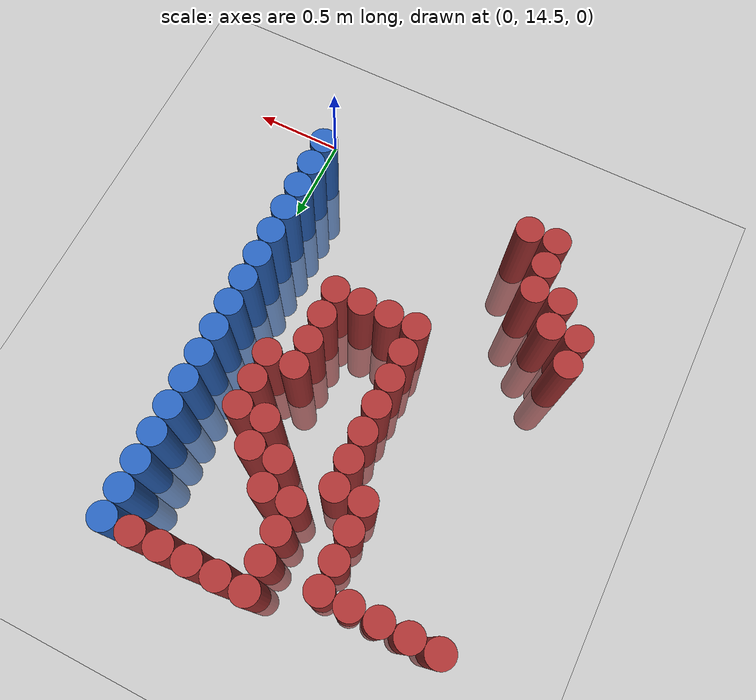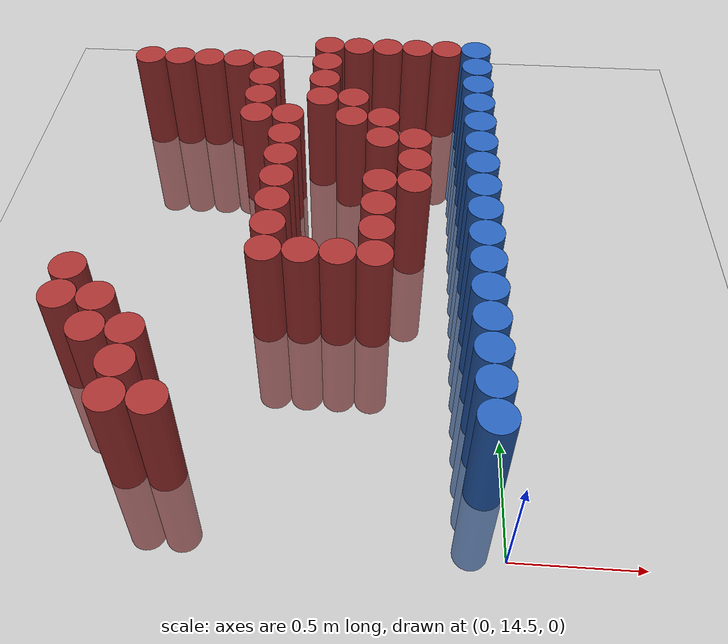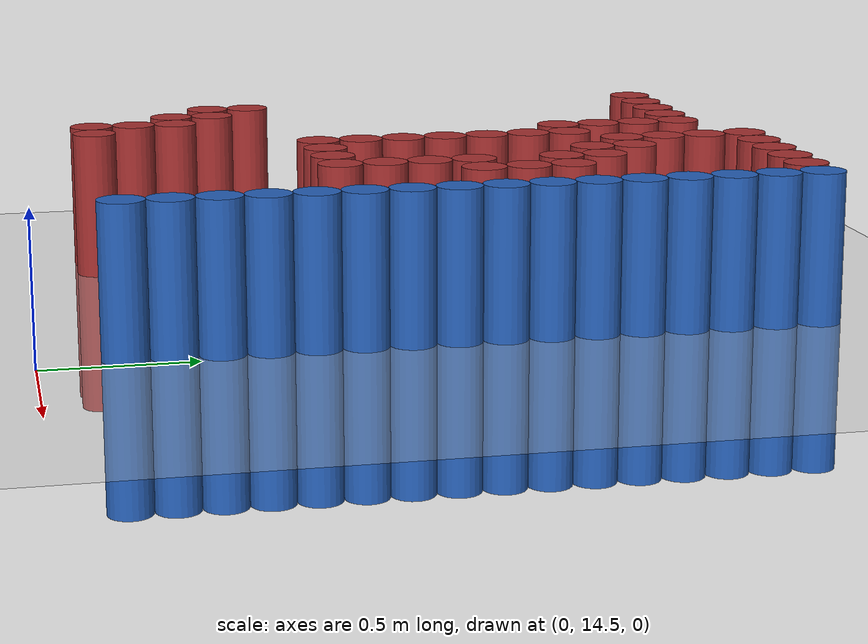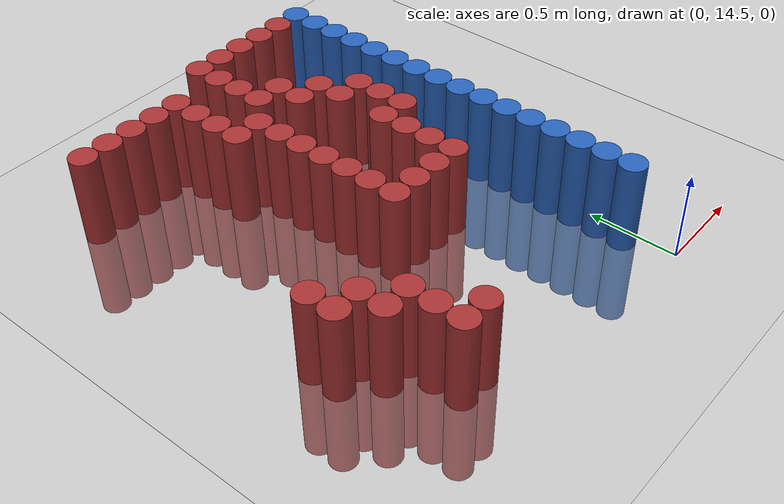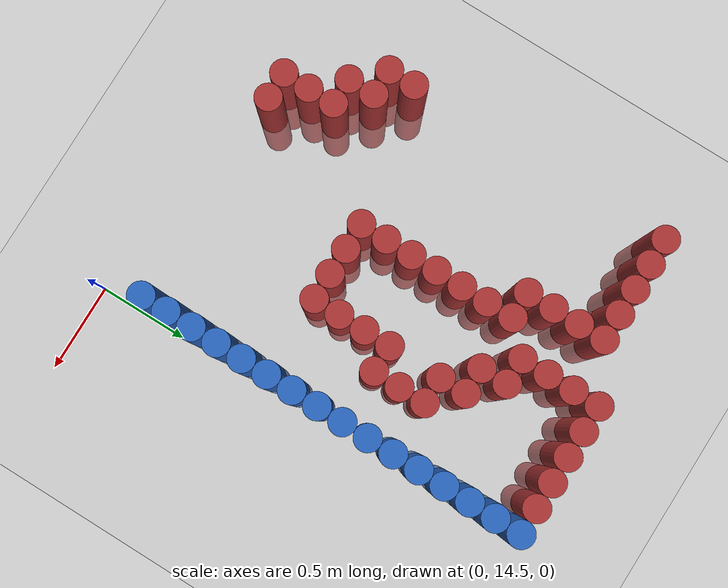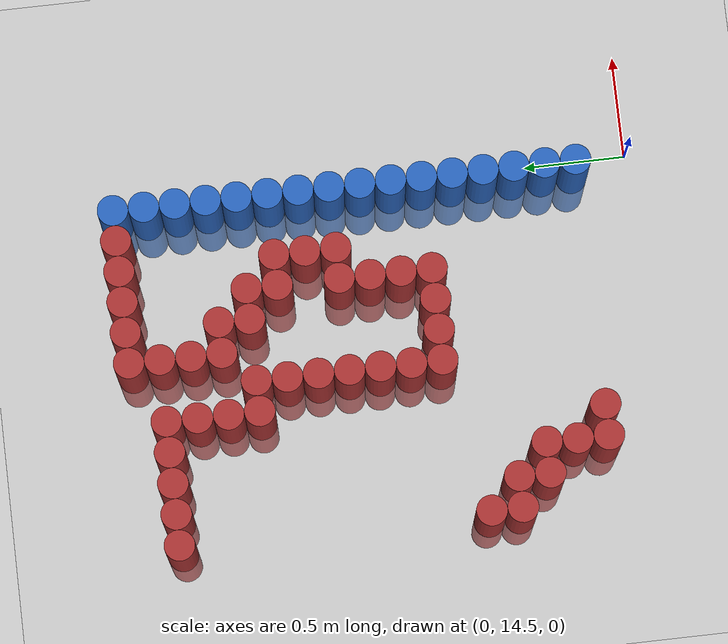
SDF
<sdf version="1.6">
 <world name="default">
  <model name="ground_plane">
   <static>1</static>
   <link name="link">
    <collision name="collision">
     <geometry><plane><normal>0 0 1</normal><size>100 100</size></plane></geometry>
     <surface><friction><ode><mu>100</mu><mu2>50</mu2></ode></friction></surface>
    </collision>
    <visual name="visual">
     <cast_shadows>0</cast_shadows>
     <geometry><plane><normal>0 0 1</normal><size>100 100</size></plane></geometry>
     <material>
      <script><uri>file://media/materials/scripts/gazebo.material</uri><name>Gazebo/Grey</name></script>
     </material>
    </visual>
   </link>
  </model>
  <model name="unit_cylinder_1362">
   <static>1</static>
   <pose>-1.725 15.225 0 0 -0 0</pose>
   <link name="link">
    <inertial>
     <mass>1</mass>
     <inertia><ixx>0.145833</ixx><ixy>0</ixy><ixz>0</ixz><iyy>0.145833</iyy><iyz>0</iyz><izz>0.125</izz></inertia>
    </inertial>
    <collision name="collision">
     <geometry><cylinder><radius>0.075</radius><length>1</length></cylinder></geometry>
    </collision>
    <visual name="visual">
     <geometry><cylinder><radius>0.075</radius><length>1</length></cylinder></geometry>
     <material><ambient>0.648 0.192 0.192 1</ambient><diffuse>0.648 0.192 0.192 1</diffuse></material>
     <material>
      <script><name>Gazebo/Grey</name><uri>file://media/materials/scripts/gazebo.material</uri></script>
     </material>
    </visual>
   </link>
  </model>
  <model name="unit_cylinder_1363">
   <static>1</static>
   <pose>-1.725 15.375 0 0 -0 0</pose>
   <link name="link">
    <inertial>
     <mass>1</mass>
     <inertia><ixx>0.145833</ixx><ixy>0</ixy><ixz>0</ixz><iyy>0.145833</iyy><iyz>0</iyz><izz>0.125</izz></inertia>
    </inertial>
    <collision name="collision">
     <geometry><cylinder><radius>0.075</radius><length>1</length></cylinder></geometry>
    </collision>
    <visual name="visual">
     <geometry><cylinder><radius>0.075</radius><length>1</length></cylinder></geometry>
     <material><ambient>0.648 0.192 0.192 1</ambient><diffuse>0.648 0.192 0.192 1</diffuse></material>
     <material>
      <script><name>Gazebo/Grey</name><uri>file://media/materials/scripts/gazebo.material</uri></script>
     </material>
    </visual>
   </link>
  </model>
  <model name="unit_cylinder_1364">
   <static>1</static>
   <pose>-1.725 16.875 0 0 -0 0</pose>
   <link name="link">
    <inertial>
     <mass>1</mass>
     <inertia><ixx>0.145833</ixx><ixy>0</ixy><ixz>0</ixz><iyy>0.145833</iyy><iyz>0</iyz><izz>0.125</izz></inertia>
    </inertial>
    <collision name="collision">
     <geometry><cylinder><radius>0.075</radius><length>1</length></cylinder></geometry>
    </collision>
    <visual name="visual">
     <geometry><cylinder><radius>0.075</radius><length>1</length></cylinder></geometry>
     <material><ambient>0.648 0.192 0.192 1</ambient><diffuse>0.648 0.192 0.192 1</diffuse></material>
     <material>
      <script><name>Gazebo/Grey</name><uri>file://media/materials/scripts/gazebo.material</uri></script>
     </material>
    </visual>
   </link>
  </model>
  <model name="unit_cylinder_1381">
   <static>1</static>
   <pose>-1.575 15.075 0 0 -0 0</pose>
   <link name="link">
    <inertial>
     <mass>1</mass>
     <inertia><ixx>0.145833</ixx><ixy>0</ixy><ixz>0</ixz><iyy>0.145833</iyy><iyz>0</iyz><izz>0.125</izz></inertia>
    </inertial>
    <collision name="collision">
     <geometry><cylinder><radius>0.075</radius><length>1</length></cylinder></geometry>
    </collision>
    <visual name="visual">
     <geometry><cylinder><radius>0.075</radius><length>1</length></cylinder></geometry>
     <material><ambient>0.648 0.192 0.192 1</ambient><diffuse>0.648 0.192 0.192 1</diffuse></material>
     <material>
      <script><name>Gazebo/Grey</name><uri>file://media/materials/scripts/gazebo.material</uri></script>
     </material>
    </visual>
   </link>
  </model>
  <model name="unit_cylinder_1382">
   <static>1</static>
   <pose>-1.575 15.225 0 0 -0 0</pose>
   <link name="link">
    <inertial>
     <mass>1</mass>
     <inertia><ixx>0.145833</ixx><ixy>0</ixy><ixz>0</ixz><iyy>0.145833</iyy><iyz>0</iyz><izz>0.125</izz></inertia>
    </inertial>
    <collision name="collision">
     <geometry><cylinder><radius>0.075</radius><length>1</length></cylinder></geometry>
    </collision>
    <visual name="visual">
     <geometry><cylinder><radius>0.075</radius><length>1</length></cylinder></geometry>
     <material><ambient>0.648 0.192 0.192 1</ambient><diffuse>0.648 0.192 0.192 1</diffuse></material>
     <material>
      <script><name>Gazebo/Grey</name><uri>file://media/materials/scripts/gazebo.material</uri></script>
     </material>
    </visual>
   </link>
  </model>
  <model name="unit_cylinder_1383">
   <static>1</static>
   <pose>-1.575 16.875 0 0 -0 0</pose>
   <link name="link">
    <inertial>
     <mass>1</mass>
     <inertia><ixx>0.145833</ixx><ixy>0</ixy><ixz>0</ixz><iyy>0.145833</iyy><iyz>0</iyz><izz>0.125</izz></inertia>
    </inertial>
    <collision name="collision">
     <geometry><cylinder><radius>0.075</radius><length>1</length></cylinder></geometry>
    </collision>
    <visual name="visual">
     <geometry><cylinder><radius>0.075</radius><length>1</length></cylinder></geometry>
     <material><ambient>0.648 0.192 0.192 1</ambient><diffuse>0.648 0.192 0.192 1</diffuse></material>
     <material>
      <script><name>Gazebo/Grey</name><uri>file://media/materials/scripts/gazebo.material</uri></script>
     </material>
    </visual>
   </link>
  </model>
  <model name="unit_cylinder_1399">
   <static>1</static>
   <pose>-1.425 14.775 0 0 -0 0</pose>
   <link name="link">
    <inertial>
     <mass>1</mass>
     <inertia><ixx>0.145833</ixx><ixy>0</ixy><ixz>0</ixz><iyy>0.145833</iyy><iyz>0</iyz><izz>0.125</izz></inertia>
    </inertial>
    <collision name="collision">
     <geometry><cylinder><radius>0.075</radius><length>1</length></cylinder></geometry>
    </collision>
    <visual name="visual">
     <geometry><cylinder><radius>0.075</radius><length>1</length></cylinder></geometry>
     <material><ambient>0.648 0.192 0.192 1</ambient><diffuse>0.648 0.192 0.192 1</diffuse></material>
     <material>
      <script><name>Gazebo/Grey</name><uri>file://media/materials/scripts/gazebo.material</uri></script>
     </material>
    </visual>
   </link>
  </model>
  <model name="unit_cylinder_1400">
   <static>1</static>
   <pose>-1.425 14.925 0 0 -0 0</pose>
   <link name="link">
    <inertial>
     <mass>1</mass>
     <inertia><ixx>0.145833</ixx><ixy>0</ixy><ixz>0</ixz><iyy>0.145833</iyy><iyz>0</iyz><izz>0.125</izz></inertia>
    </inertial>
    <collision name="collision">
     <geometry><cylinder><radius>0.075</radius><length>1</length></cylinder></geometry>
    </collision>
    <visual name="visual">
     <geometry><cylinder><radius>0.075</radius><length>1</length></cylinder></geometry>
     <material><ambient>0.648 0.192 0.192 1</ambient><diffuse>0.648 0.192 0.192 1</diffuse></material>
     <material>
      <script><name>Gazebo/Grey</name><uri>file://media/materials/scripts/gazebo.material</uri></script>
     </material>
    </visual>
   </link>
  </model>
  <model name="unit_cylinder_1401">
   <static>1</static>
   <pose>-1.425 15.075 0 0 -0 0</pose>
   <link name="link">
    <inertial>
     <mass>1</mass>
     <inertia><ixx>0.145833</ixx><ixy>0</ixy><ixz>0</ixz><iyy>0.145833</iyy><iyz>0</iyz><izz>0.125</izz></inertia>
    </inertial>
    <collision name="collision">
     <geometry><cylinder><radius>0.075</radius><length>1</length></cylinder></geometry>
    </collision>
    <visual name="visual">
     <geometry><cylinder><radius>0.075</radius><length>1</length></cylinder></geometry>
     <material><ambient>0.648 0.192 0.192 1</ambient><diffuse>0.648 0.192 0.192 1</diffuse></material>
     <material>
      <script><name>Gazebo/Grey</name><uri>file://media/materials/scripts/gazebo.material</uri></script>
     </material>
    </visual>
   </link>
  </model>
  <model name="unit_cylinder_1402">
   <static>1</static>
   <pose>-1.425 16.875 0 0 -0 0</pose>
   <link name="link">
    <inertial>
     <mass>1</mass>
     <inertia><ixx>0.145833</ixx><ixy>0</ixy><ixz>0</ixz><iyy>0.145833</iyy><iyz>0</iyz><izz>0.125</izz></inertia>
    </inertial>
    <collision name="collision">
     <geometry><cylinder><radius>0.075</radius><length>1</length></cylinder></geometry>
    </collision>
    <visual name="visual">
     <geometry><cylinder><radius>0.075</radius><length>1</length></cylinder></geometry>
     <material><ambient>0.648 0.192 0.192 1</ambient><diffuse>0.648 0.192 0.192 1</diffuse></material>
     <material>
      <script><name>Gazebo/Grey</name><uri>file://media/materials/scripts/gazebo.material</uri></script>
     </material>
    </visual>
   </link>
  </model>
  <model name="unit_cylinder_1421">
   <static>1</static>
   <pose>-1.275 14.775 0 0 -0 0</pose>
   <link name="link">
    <inertial>
     <mass>1</mass>
     <inertia><ixx>0.145833</ixx><ixy>0</ixy><ixz>0</ixz><iyy>0.145833</iyy><iyz>0</iyz><izz>0.125</izz></inertia>
    </inertial>
    <collision name="collision">
     <geometry><cylinder><radius>0.075</radius><length>1</length></cylinder></geometry>
    </collision>
    <visual name="visual">
     <geometry><cylinder><radius>0.075</radius><length>1</length></cylinder></geometry>
     <material><ambient>0.648 0.192 0.192 1</ambient><diffuse>0.648 0.192 0.192 1</diffuse></material>
     <material>
      <script><name>Gazebo/Grey</name><uri>file://media/materials/scripts/gazebo.material</uri></script>
     </material>
    </visual>
   </link>
  </model>
  <model name="unit_cylinder_1422">
   <static>1</static>
   <pose>-1.275 16.875 0 0 -0 0</pose>
   <link name="link">
    <inertial>
     <mass>1</mass>
     <inertia><ixx>0.145833</ixx><ixy>0</ixy><ixz>0</ixz><iyy>0.145833</iyy><iyz>0</iyz><izz>0.125</izz></inertia>
    </inertial>
    <collision name="collision">
     <geometry><cylinder><radius>0.075</radius><length>1</length></cylinder></geometry>
    </collision>
    <visual name="visual">
     <geometry><cylinder><radius>0.075</radius><length>1</length></cylinder></geometry>
     <material><ambient>0.648 0.192 0.192 1</ambient><diffuse>0.648 0.192 0.192 1</diffuse></material>
     <material>
      <script><name>Gazebo/Grey</name><uri>file://media/materials/scripts/gazebo.material</uri></script>
     </material>
    </visual>
   </link>
  </model>
  <model name="unit_cylinder_1443">
   <static>1</static>
   <pose>-1.125 16.425 0 0 -0 0</pose>
   <link name="link">
    <inertial>
     <mass>1</mass>
     <inertia><ixx>0.145833</ixx><ixy>0</ixy><ixz>0</ixz><iyy>0.145833</iyy><iyz>0</iyz><izz>0.125</izz></inertia>
    </inertial>
    <collision name="collision">
     <geometry><cylinder><radius>0.075</radius><length>1</length></cylinder></geometry>
    </collision>
    <visual name="visual">
     <geometry><cylinder><radius>0.075</radius><length>1</length></cylinder></geometry>
     <material><ambient>0.648 0.192 0.192 1</ambient><diffuse>0.648 0.192 0.192 1</diffuse></material>
     <material>
      <script><name>Gazebo/Grey</name><uri>file://media/materials/scripts/gazebo.material</uri></script>
     </material>
    </visual>
   </link>
  </model>
  <model name="unit_cylinder_1444">
   <static>1</static>
   <pose>-1.125 16.575 0 0 -0 0</pose>
   <link name="link">
    <inertial>
     <mass>1</mass>
     <inertia><ixx>0.145833</ixx><ixy>0</ixy><ixz>0</ixz><iyy>0.145833</iyy><iyz>0</iyz><izz>0.125</izz></inertia>
    </inertial>
    <collision name="collision">
     <geometry><cylinder><radius>0.075</radius><length>1</length></cylinder></geometry>
    </collision>
    <visual name="visual">
     <geometry><cylinder><radius>0.075</radius><length>1</length></cylinder></geometry>
     <material><ambient>0.648 0.192 0.192 1</ambient><diffuse>0.648 0.192 0.192 1</diffuse></material>
     <material>
      <script><name>Gazebo/Grey</name><uri>file://media/materials/scripts/gazebo.material</uri></script>
     </material>
    </visual>
   </link>
  </model>
  <model name="unit_cylinder_1445">
   <static>1</static>
   <pose>-1.125 16.725 0 0 -0 0</pose>
   <link name="link">
    <inertial>
     <mass>1</mass>
     <inertia><ixx>0.145833</ixx><ixy>0</ixy><ixz>0</ixz><iyy>0.145833</iyy><iyz>0</iyz><izz>0.125</izz></inertia>
    </inertial>
    <collision name="collision">
     <geometry><cylinder><radius>0.075</radius><length>1</length></cylinder></geometry>
    </collision>
    <visual name="visual">
     <geometry><cylinder><radius>0.075</radius><length>1</length></cylinder></geometry>
     <material><ambient>0.648 0.192 0.192 1</ambient><diffuse>0.648 0.192 0.192 1</diffuse></material>
     <material>
      <script><name>Gazebo/Grey</name><uri>file://media/materials/scripts/gazebo.material</uri></script>
     </material>
    </visual>
   </link>
  </model>
  <model name="unit_cylinder_1446">
   <static>1</static>
   <pose>-1.125 16.875 0 0 -0 0</pose>
   <link name="link">
    <inertial>
     <mass>1</mass>
     <inertia><ixx>0.145833</ixx><ixy>0</ixy><ixz>0</ixz><iyy>0.145833</iyy><iyz>0</iyz><izz>0.125</izz></inertia>
    </inertial>
    <collision name="collision">
     <geometry><cylinder><radius>0.075</radius><length>1</length></cylinder></geometry>
    </collision>
    <visual name="visual">
     <geometry><cylinder><radius>0.075</radius><length>1</length></cylinder></geometry>
     <material><ambient>0.648 0.192 0.192 1</ambient><diffuse>0.648 0.192 0.192 1</diffuse></material>
     <material>
      <script><name>Gazebo/Grey</name><uri>file://media/materials/scripts/gazebo.material</uri></script>
     </material>
    </visual>
   </link>
  </model>
  <model name="unit_cylinder_1466">
   <static>1</static>
   <pose>-0.975 15.525 0 0 -0 0</pose>
   <link name="link">
    <inertial>
     <mass>1</mass>
     <inertia><ixx>0.145833</ixx><ixy>0</ixy><ixz>0</ixz><iyy>0.145833</iyy><iyz>0</iyz><izz>0.125</izz></inertia>
    </inertial>
    <collision name="collision">
     <geometry><cylinder><radius>0.075</radius><length>1</length></cylinder></geometry>
    </collision>
    <visual name="visual">
     <geometry><cylinder><radius>0.075</radius><length>1</length></cylinder></geometry>
     <material><ambient>0.648 0.192 0.192 1</ambient><diffuse>0.648 0.192 0.192 1</diffuse></material>
     <material>
      <script><name>Gazebo/Grey</name><uri>file://media/materials/scripts/gazebo.material</uri></script>
     </material>
    </visual>
   </link>
  </model>
  <model name="unit_cylinder_1467">
   <static>1</static>
   <pose>-0.975 15.675 0 0 -0 0</pose>
   <link name="link">
    <inertial>
     <mass>1</mass>
     <inertia><ixx>0.145833</ixx><ixy>0</ixy><ixz>0</ixz><iyy>0.145833</iyy><iyz>0</iyz><izz>0.125</izz></inertia>
    </inertial>
    <collision name="collision">
     <geometry><cylinder><radius>0.075</radius><length>1</length></cylinder></geometry>
    </collision>
    <visual name="visual">
     <geometry><cylinder><radius>0.075</radius><length>1</length></cylinder></geometry>
     <material><ambient>0.648 0.192 0.192 1</ambient><diffuse>0.648 0.192 0.192 1</diffuse></material>
     <material>
      <script><name>Gazebo/Grey</name><uri>file://media/materials/scripts/gazebo.material</uri></script>
     </material>
    </visual>
   </link>
  </model>
  <model name="unit_cylinder_1468">
   <static>1</static>
   <pose>-0.975 15.825 0 0 -0 0</pose>
   <link name="link">
    <inertial>
     <mass>1</mass>
     <inertia><ixx>0.145833</ixx><ixy>0</ixy><ixz>0</ixz><iyy>0.145833</iyy><iyz>0</iyz><izz>0.125</izz></inertia>
    </inertial>
    <collision name="collision">
     <geometry><cylinder><radius>0.075</radius><length>1</length></cylinder></geometry>
    </collision>
    <visual name="visual">
     <geometry><cylinder><radius>0.075</radius><length>1</length></cylinder></geometry>
     <material><ambient>0.648 0.192 0.192 1</ambient><diffuse>0.648 0.192 0.192 1</diffuse></material>
     <material>
      <script><name>Gazebo/Grey</name><uri>file://media/materials/scripts/gazebo.material</uri></script>
     </material>
    </visual>
   </link>
  </model>
  <model name="unit_cylinder_1469">
   <static>1</static>
   <pose>-0.975 15.975 0 0 -0 0</pose>
   <link name="link">
    <inertial>
     <mass>1</mass>
     <inertia><ixx>0.145833</ixx><ixy>0</ixy><ixz>0</ixz><iyy>0.145833</iyy><iyz>0</iyz><izz>0.125</izz></inertia>
    </inertial>
    <collision name="collision">
     <geometry><cylinder><radius>0.075</radius><length>1</length></cylinder></geometry>
    </collision>
    <visual name="visual">
     <geometry><cylinder><radius>0.075</radius><length>1</length></cylinder></geometry>
     <material><ambient>0.648 0.192 0.192 1</ambient><diffuse>0.648 0.192 0.192 1</diffuse></material>
     <material>
      <script><name>Gazebo/Grey</name><uri>file://media/materials/scripts/gazebo.material</uri></script>
     </material>
    </visual>
   </link>
  </model>
  <model name="unit_cylinder_1470">
   <static>1</static>
   <pose>-0.975 16.125 0 0 -0 0</pose>
   <link name="link">
    <inertial>
     <mass>1</mass>
     <inertia><ixx>0.145833</ixx><ixy>0</ixy><ixz>0</ixz><iyy>0.145833</iyy><iyz>0</iyz><izz>0.125</izz></inertia>
    </inertial>
    <collision name="collision">
     <geometry><cylinder><radius>0.075</radius><length>1</length></cylinder></geometry>
    </collision>
    <visual name="visual">
     <geometry><cylinder><radius>0.075</radius><length>1</length></cylinder></geometry>
     <material><ambient>0.648 0.192 0.192 1</ambient><diffuse>0.648 0.192 0.192 1</diffuse></material>
     <material>
      <script><name>Gazebo/Grey</name><uri>file://media/materials/scripts/gazebo.material</uri></script>
     </material>
    </visual>
   </link>
  </model>
  <model name="unit_cylinder_1471">
   <static>1</static>
   <pose>-0.975 16.275 0 0 -0 0</pose>
   <link name="link">
    <inertial>
     <mass>1</mass>
     <inertia><ixx>0.145833</ixx><ixy>0</ixy><ixz>0</ixz><iyy>0.145833</iyy><iyz>0</iyz><izz>0.125</izz></inertia>
    </inertial>
    <collision name="collision">
     <geometry><cylinder><radius>0.075</radius><length>1</length></cylinder></geometry>
    </collision>
    <visual name="visual">
     <geometry><cylinder><radius>0.075</radius><length>1</length></cylinder></geometry>
     <material><ambient>0.648 0.192 0.192 1</ambient><diffuse>0.648 0.192 0.192 1</diffuse></material>
     <material>
      <script><name>Gazebo/Grey</name><uri>file://media/materials/scripts/gazebo.material</uri></script>
     </material>
    </visual>
   </link>
  </model>
  <model name="unit_cylinder_1472">
   <static>1</static>
   <pose>-0.975 16.425 0 0 -0 0</pose>
   <link name="link">
    <inertial>
     <mass>1</mass>
     <inertia><ixx>0.145833</ixx><ixy>0</ixy><ixz>0</ixz><iyy>0.145833</iyy><iyz>0</iyz><izz>0.125</izz></inertia>
    </inertial>
    <collision name="collision">
     <geometry><cylinder><radius>0.075</radius><length>1</length></cylinder></geometry>
    </collision>
    <visual name="visual">
     <geometry><cylinder><radius>0.075</radius><length>1</length></cylinder></geometry>
     <material><ambient>0.648 0.192 0.192 1</ambient><diffuse>0.648 0.192 0.192 1</diffuse></material>
     <material>
      <script><name>Gazebo/Grey</name><uri>file://media/materials/scripts/gazebo.material</uri></script>
     </material>
    </visual>
   </link>
  </model>
  <model name="unit_cylinder_1485">
   <static>1</static>
   <pose>-0.825 15.525 0 0 -0 0</pose>
   <link name="link">
    <inertial>
     <mass>1</mass>
     <inertia><ixx>0.145833</ixx><ixy>0</ixy><ixz>0</ixz><iyy>0.145833</iyy><iyz>0</iyz><izz>0.125</izz></inertia>
    </inertial>
    <collision name="collision">
     <geometry><cylinder><radius>0.075</radius><length>1</length></cylinder></geometry>
    </collision>
    <visual name="visual">
     <geometry><cylinder><radius>0.075</radius><length>1</length></cylinder></geometry>
     <material><ambient>0.648 0.192 0.192 1</ambient><diffuse>0.648 0.192 0.192 1</diffuse></material>
     <material>
      <script><name>Gazebo/Grey</name><uri>file://media/materials/scripts/gazebo.material</uri></script>
     </material>
    </visual>
   </link>
  </model>
  <model name="unit_cylinder_1486">
   <static>1</static>
   <pose>-0.825 16.575 0 0 -0 0</pose>
   <link name="link">
    <inertial>
     <mass>1</mass>
     <inertia><ixx>0.145833</ixx><ixy>0</ixy><ixz>0</ixz><iyy>0.145833</iyy><iyz>0</iyz><izz>0.125</izz></inertia>
    </inertial>
    <collision name="collision">
     <geometry><cylinder><radius>0.075</radius><length>1</length></cylinder></geometry>
    </collision>
    <visual name="visual">
     <geometry><cylinder><radius>0.075</radius><length>1</length></cylinder></geometry>
     <material><ambient>0.648 0.192 0.192 1</ambient><diffuse>0.648 0.192 0.192 1</diffuse></material>
     <material>
      <script><name>Gazebo/Grey</name><uri>file://media/materials/scripts/gazebo.material</uri></script>
     </material>
    </visual>
   </link>
  </model>
  <model name="unit_cylinder_1487">
   <static>1</static>
   <pose>-0.825 16.725 0 0 -0 0</pose>
   <link name="link">
    <inertial>
     <mass>1</mass>
     <inertia><ixx>0.145833</ixx><ixy>0</ixy><ixz>0</ixz><iyy>0.145833</iyy><iyz>0</iyz><izz>0.125</izz></inertia>
    </inertial>
    <collision name="collision">
     <geometry><cylinder><radius>0.075</radius><length>1</length></cylinder></geometry>
    </collision>
    <visual name="visual">
     <geometry><cylinder><radius>0.075</radius><length>1</length></cylinder></geometry>
     <material><ambient>0.648 0.192 0.192 1</ambient><diffuse>0.648 0.192 0.192 1</diffuse></material>
     <material>
      <script><name>Gazebo/Grey</name><uri>file://media/materials/scripts/gazebo.material</uri></script>
     </material>
    </visual>
   </link>
  </model>
  <model name="unit_cylinder_1488">
   <static>1</static>
   <pose>-0.825 16.875 0 0 -0 0</pose>
   <link name="link">
    <inertial>
     <mass>1</mass>
     <inertia><ixx>0.145833</ixx><ixy>0</ixy><ixz>0</ixz><iyy>0.145833</iyy><iyz>0</iyz><izz>0.125</izz></inertia>
    </inertial>
    <collision name="collision">
     <geometry><cylinder><radius>0.075</radius><length>1</length></cylinder></geometry>
    </collision>
    <visual name="visual">
     <geometry><cylinder><radius>0.075</radius><length>1</length></cylinder></geometry>
     <material><ambient>0.648 0.192 0.192 1</ambient><diffuse>0.648 0.192 0.192 1</diffuse></material>
     <material>
      <script><name>Gazebo/Grey</name><uri>file://media/materials/scripts/gazebo.material</uri></script>
     </material>
    </visual>
   </link>
  </model>
  <model name="unit_cylinder_1489">
   <static>1</static>
   <pose>-0.825 17.025 0 0 -0 0</pose>
   <link name="link">
    <inertial>
     <mass>1</mass>
     <inertia><ixx>0.145833</ixx><ixy>0</ixy><ixz>0</ixz><iyy>0.145833</iyy><iyz>0</iyz><izz>0.125</izz></inertia>
    </inertial>
    <collision name="collision">
     <geometry><cylinder><radius>0.075</radius><length>1</length></cylinder></geometry>
    </collision>
    <visual name="visual">
     <geometry><cylinder><radius>0.075</radius><length>1</length></cylinder></geometry>
     <material><ambient>0.648 0.192 0.192 1</ambient><diffuse>0.648 0.192 0.192 1</diffuse></material>
     <material>
      <script><name>Gazebo/Grey</name><uri>file://media/materials/scripts/gazebo.material</uri></script>
     </material>
    </visual>
   </link>
  </model>
  <model name="unit_cylinder_1500">
   <static>1</static>
   <pose>-0.675 15.525 0 0 -0 0</pose>
   <link name="link">
    <inertial>
     <mass>1</mass>
     <inertia><ixx>0.145833</ixx><ixy>0</ixy><ixz>0</ixz><iyy>0.145833</iyy><iyz>0</iyz><izz>0.125</izz></inertia>
    </inertial>
    <collision name="collision">
     <geometry><cylinder><radius>0.075</radius><length>1</length></cylinder></geometry>
    </collision>
    <visual name="visual">
     <geometry><cylinder><radius>0.075</radius><length>1</length></cylinder></geometry>
     <material><ambient>0.648 0.192 0.192 1</ambient><diffuse>0.648 0.192 0.192 1</diffuse></material>
     <material>
      <script><name>Gazebo/Grey</name><uri>file://media/materials/scripts/gazebo.material</uri></script>
     </material>
    </visual>
   </link>
  </model>
  <model name="unit_cylinder_1501">
   <static>1</static>
   <pose>-0.675 16.425 0 0 -0 0</pose>
   <link name="link">
    <inertial>
     <mass>1</mass>
     <inertia><ixx>0.145833</ixx><ixy>0</ixy><ixz>0</ixz><iyy>0.145833</iyy><iyz>0</iyz><izz>0.125</izz></inertia>
    </inertial>
    <collision name="collision">
     <geometry><cylinder><radius>0.075</radius><length>1</length></cylinder></geometry>
    </collision>
    <visual name="visual">
     <geometry><cylinder><radius>0.075</radius><length>1</length></cylinder></geometry>
     <material><ambient>0.648 0.192 0.192 1</ambient><diffuse>0.648 0.192 0.192 1</diffuse></material>
     <material>
      <script><name>Gazebo/Grey</name><uri>file://media/materials/scripts/gazebo.material</uri></script>
     </material>
    </visual>
   </link>
  </model>
  <model name="unit_cylinder_1502">
   <static>1</static>
   <pose>-0.675 16.575 0 0 -0 0</pose>
   <link name="link">
    <inertial>
     <mass>1</mass>
     <inertia><ixx>0.145833</ixx><ixy>0</ixy><ixz>0</ixz><iyy>0.145833</iyy><iyz>0</iyz><izz>0.125</izz></inertia>
    </inertial>
    <collision name="collision">
     <geometry><cylinder><radius>0.075</radius><length>1</length></cylinder></geometry>
    </collision>
    <visual name="visual">
     <geometry><cylinder><radius>0.075</radius><length>1</length></cylinder></geometry>
     <material><ambient>0.648 0.192 0.192 1</ambient><diffuse>0.648 0.192 0.192 1</diffuse></material>
     <material>
      <script><name>Gazebo/Grey</name><uri>file://media/materials/scripts/gazebo.material</uri></script>
     </material>
    </visual>
   </link>
  </model>
  <model name="unit_cylinder_1503">
   <static>1</static>
   <pose>-0.675 17.025 0 0 -0 0</pose>
   <link name="link">
    <inertial>
     <mass>1</mass>
     <inertia><ixx>0.145833</ixx><ixy>0</ixy><ixz>0</ixz><iyy>0.145833</iyy><iyz>0</iyz><izz>0.125</izz></inertia>
    </inertial>
    <collision name="collision">
     <geometry><cylinder><radius>0.075</radius><length>1</length></cylinder></geometry>
    </collision>
    <visual name="visual">
     <geometry><cylinder><radius>0.075</radius><length>1</length></cylinder></geometry>
     <material><ambient>0.648 0.192 0.192 1</ambient><diffuse>0.648 0.192 0.192 1</diffuse></material>
     <material>
      <script><name>Gazebo/Grey</name><uri>file://media/materials/scripts/gazebo.material</uri></script>
     </material>
    </visual>
   </link>
  </model>
  <model name="unit_cylinder_1524">
   <static>1</static>
   <pose>-0.525 15.525 0 0 -0 0</pose>
   <link name="link">
    <inertial>
     <mass>1</mass>
     <inertia><ixx>0.145833</ixx><ixy>0</ixy><ixz>0</ixz><iyy>0.145833</iyy><iyz>0</iyz><izz>0.125</izz></inertia>
    </inertial>
    <collision name="collision">
     <geometry><cylinder><radius>0.075</radius><length>1</length></cylinder></geometry>
    </collision>
    <visual name="visual">
     <geometry><cylinder><radius>0.075</radius><length>1</length></cylinder></geometry>
     <material><ambient>0.648 0.192 0.192 1</ambient><diffuse>0.648 0.192 0.192 1</diffuse></material>
     <material>
      <script><name>Gazebo/Grey</name><uri>file://media/materials/scripts/gazebo.material</uri></script>
     </material>
    </visual>
   </link>
  </model>
  <model name="unit_cylinder_1525">
   <static>1</static>
   <pose>-0.525 15.675 0 0 -0 0</pose>
   <link name="link">
    <inertial>
     <mass>1</mass>
     <inertia><ixx>0.145833</ixx><ixy>0</ixy><ixz>0</ixz><iyy>0.145833</iyy><iyz>0</iyz><izz>0.125</izz></inertia>
    </inertial>
    <collision name="collision">
     <geometry><cylinder><radius>0.075</radius><length>1</length></cylinder></geometry>
    </collision>
    <visual name="visual">
     <geometry><cylinder><radius>0.075</radius><length>1</length></cylinder></geometry>
     <material><ambient>0.648 0.192 0.192 1</ambient><diffuse>0.648 0.192 0.192 1</diffuse></material>
     <material>
      <script><name>Gazebo/Grey</name><uri>file://media/materials/scripts/gazebo.material</uri></script>
     </material>
    </visual>
   </link>
  </model>
  <model name="unit_cylinder_1526">
   <static>1</static>
   <pose>-0.525 15.825 0 0 -0 0</pose>
   <link name="link">
    <inertial>
     <mass>1</mass>
     <inertia><ixx>0.145833</ixx><ixy>0</ixy><ixz>0</ixz><iyy>0.145833</iyy><iyz>0</iyz><izz>0.125</izz></inertia>
    </inertial>
    <collision name="collision">
     <geometry><cylinder><radius>0.075</radius><length>1</length></cylinder></geometry>
    </collision>
    <visual name="visual">
     <geometry><cylinder><radius>0.075</radius><length>1</length></cylinder></geometry>
     <material><ambient>0.648 0.192 0.192 1</ambient><diffuse>0.648 0.192 0.192 1</diffuse></material>
     <material>
      <script><name>Gazebo/Grey</name><uri>file://media/materials/scripts/gazebo.material</uri></script>
     </material>
    </visual>
   </link>
  </model>
  <model name="unit_cylinder_1527">
   <static>1</static>
   <pose>-0.525 15.975 0 0 -0 0</pose>
   <link name="link">
    <inertial>
     <mass>1</mass>
     <inertia><ixx>0.145833</ixx><ixy>0</ixy><ixz>0</ixz><iyy>0.145833</iyy><iyz>0</iyz><izz>0.125</izz></inertia>
    </inertial>
    <collision name="collision">
     <geometry><cylinder><radius>0.075</radius><length>1</length></cylinder></geometry>
    </collision>
    <visual name="visual">
     <geometry><cylinder><radius>0.075</radius><length>1</length></cylinder></geometry>
     <material><ambient>0.648 0.192 0.192 1</ambient><diffuse>0.648 0.192 0.192 1</diffuse></material>
     <material>
      <script><name>Gazebo/Grey</name><uri>file://media/materials/scripts/gazebo.material</uri></script>
     </material>
    </visual>
   </link>
  </model>
  <model name="unit_cylinder_1528">
   <static>1</static>
   <pose>-0.525 16.275 0 0 -0 0</pose>
   <link name="link">
    <inertial>
     <mass>1</mass>
     <inertia><ixx>0.145833</ixx><ixy>0</ixy><ixz>0</ixz><iyy>0.145833</iyy><iyz>0</iyz><izz>0.125</izz></inertia>
    </inertial>
    <collision name="collision">
     <geometry><cylinder><radius>0.075</radius><length>1</length></cylinder></geometry>
    </collision>
    <visual name="visual">
     <geometry><cylinder><radius>0.075</radius><length>1</length></cylinder></geometry>
     <material><ambient>0.648 0.192 0.192 1</ambient><diffuse>0.648 0.192 0.192 1</diffuse></material>
     <material>
      <script><name>Gazebo/Grey</name><uri>file://media/materials/scripts/gazebo.material</uri></script>
     </material>
    </visual>
   </link>
  </model>
  <model name="unit_cylinder_1529">
   <static>1</static>
   <pose>-0.525 16.425 0 0 -0 0</pose>
   <link name="link">
    <inertial>
     <mass>1</mass>
     <inertia><ixx>0.145833</ixx><ixy>0</ixy><ixz>0</ixz><iyy>0.145833</iyy><iyz>0</iyz><izz>0.125</izz></inertia>
    </inertial>
    <collision name="collision">
     <geometry><cylinder><radius>0.075</radius><length>1</length></cylinder></geometry>
    </collision>
    <visual name="visual">
     <geometry><cylinder><radius>0.075</radius><length>1</length></cylinder></geometry>
     <material><ambient>0.648 0.192 0.192 1</ambient><diffuse>0.648 0.192 0.192 1</diffuse></material>
     <material>
      <script><name>Gazebo/Grey</name><uri>file://media/materials/scripts/gazebo.material</uri></script>
     </material>
    </visual>
   </link>
  </model>
  <model name="unit_cylinder_1530">
   <static>1</static>
   <pose>-0.525 17.025 0 0 -0 0</pose>
   <link name="link">
    <inertial>
     <mass>1</mass>
     <inertia><ixx>0.145833</ixx><ixy>0</ixy><ixz>0</ixz><iyy>0.145833</iyy><iyz>0</iyz><izz>0.125</izz></inertia>
    </inertial>
    <collision name="collision">
     <geometry><cylinder><radius>0.075</radius><length>1</length></cylinder></geometry>
    </collision>
    <visual name="visual">
     <geometry><cylinder><radius>0.075</radius><length>1</length></cylinder></geometry>
     <material><ambient>0.648 0.192 0.192 1</ambient><diffuse>0.648 0.192 0.192 1</diffuse></material>
     <material>
      <script><name>Gazebo/Grey</name><uri>file://media/materials/scripts/gazebo.material</uri></script>
     </material>
    </visual>
   </link>
  </model>
  <model name="unit_cylinder_1548">
   <static>1</static>
   <pose>-0.375 15.975 0 0 -0 0</pose>
   <link name="link">
    <inertial>
     <mass>1</mass>
     <inertia><ixx>0.145833</ixx><ixy>0</ixy><ixz>0</ixz><iyy>0.145833</iyy><iyz>0</iyz><izz>0.125</izz></inertia>
    </inertial>
    <collision name="collision">
     <geometry><cylinder><radius>0.075</radius><length>1</length></cylinder></geometry>
    </collision>
    <visual name="visual">
     <geometry><cylinder><radius>0.075</radius><length>1</length></cylinder></geometry>
     <material><ambient>0.648 0.192 0.192 1</ambient><diffuse>0.648 0.192 0.192 1</diffuse></material>
     <material>
      <script><name>Gazebo/Grey</name><uri>file://media/materials/scripts/gazebo.material</uri></script>
     </material>
    </visual>
   </link>
  </model>
  <model name="unit_cylinder_1549">
   <static>1</static>
   <pose>-0.375 16.125 0 0 -0 0</pose>
   <link name="link">
    <inertial>
     <mass>1</mass>
     <inertia><ixx>0.145833</ixx><ixy>0</ixy><ixz>0</ixz><iyy>0.145833</iyy><iyz>0</iyz><izz>0.125</izz></inertia>
    </inertial>
    <collision name="collision">
     <geometry><cylinder><radius>0.075</radius><length>1</length></cylinder></geometry>
    </collision>
    <visual name="visual">
     <geometry><cylinder><radius>0.075</radius><length>1</length></cylinder></geometry>
     <material><ambient>0.648 0.192 0.192 1</ambient><diffuse>0.648 0.192 0.192 1</diffuse></material>
     <material>
      <script><name>Gazebo/Grey</name><uri>file://media/materials/scripts/gazebo.material</uri></script>
     </material>
    </visual>
   </link>
  </model>
  <model name="unit_cylinder_1550">
   <static>1</static>
   <pose>-0.375 16.275 0 0 -0 0</pose>
   <link name="link">
    <inertial>
     <mass>1</mass>
     <inertia><ixx>0.145833</ixx><ixy>0</ixy><ixz>0</ixz><iyy>0.145833</iyy><iyz>0</iyz><izz>0.125</izz></inertia>
    </inertial>
    <collision name="collision">
     <geometry><cylinder><radius>0.075</radius><length>1</length></cylinder></geometry>
    </collision>
    <visual name="visual">
     <geometry><cylinder><radius>0.075</radius><length>1</length></cylinder></geometry>
     <material><ambient>0.648 0.192 0.192 1</ambient><diffuse>0.648 0.192 0.192 1</diffuse></material>
     <material>
      <script><name>Gazebo/Grey</name><uri>file://media/materials/scripts/gazebo.material</uri></script>
     </material>
    </visual>
   </link>
  </model>
  <model name="unit_cylinder_1551">
   <static>1</static>
   <pose>-0.375 17.025 0 0 -0 0</pose>
   <link name="link">
    <inertial>
     <mass>1</mass>
     <inertia><ixx>0.145833</ixx><ixy>0</ixy><ixz>0</ixz><iyy>0.145833</iyy><iyz>0</iyz><izz>0.125</izz></inertia>
    </inertial>
    <collision name="collision">
     <geometry><cylinder><radius>0.075</radius><length>1</length></cylinder></geometry>
    </collision>
    <visual name="visual">
     <geometry><cylinder><radius>0.075</radius><length>1</length></cylinder></geometry>
     <material><ambient>0.648 0.192 0.192 1</ambient><diffuse>0.648 0.192 0.192 1</diffuse></material>
     <material>
      <script><name>Gazebo/Grey</name><uri>file://media/materials/scripts/gazebo.material</uri></script>
     </material>
    </visual>
   </link>
  </model>
  <model name="unit_cylinder_1553">
   <static>1</static>
   <pose>-0.225 17.025 0 0 -0 0</pose>
   <link name="link">
    <inertial>
     <mass>1</mass>
     <inertia><ixx>0.145833</ixx><ixy>0</ixy><ixz>0</ixz><iyy>0.145833</iyy><iyz>0</iyz><izz>0.125</izz></inertia>
    </inertial>
    <collision name="collision">
     <geometry><cylinder><radius>0.075</radius><length>1</length></cylinder></geometry>
    </collision>
    <visual name="visual">
     <geometry><cylinder><radius>0.075</radius><length>1</length></cylinder></geometry>
     <material><ambient>0.648 0.192 0.192 1</ambient><diffuse>0.648 0.192 0.192 1</diffuse></material>
     <material>
      <script><name>Gazebo/Grey</name><uri>file://media/materials/scripts/gazebo.material</uri></script>
     </material>
    </visual>
   </link>
  </model>
  <model name="unit_cylinder_1618">
   <static>1</static>
   <pose>-0.075 14.775 0 0 -0 0</pose>
   <link name="link">
    <inertial>
     <mass>1</mass>
     <inertia><ixx>0.145833</ixx><ixy>0</ixy><ixz>0</ixz><iyy>0.145833</iyy><iyz>0</iyz><izz>0.125</izz></inertia>
    </inertial>
    <collision name="collision">
     <geometry><cylinder><radius>0.075</radius><length>1</length></cylinder></geometry>
    </collision>
    <visual name="visual">
     <geometry><cylinder><radius>0.075</radius><length>1</length></cylinder></geometry>
     <material><ambient>0.152 0.379 0.72 1</ambient><diffuse>0.152 0.379 0.72 1</diffuse></material>
     <material>
      <script><name>Gazebo/Grey</name><uri>file://media/materials/scripts/gazebo.material</uri></script>
     </material>
    </visual>
   </link>
  </model>
  <model name="unit_cylinder_1619">
   <static>1</static>
   <pose>-0.075 14.925 0 0 -0 0</pose>
   <link name="link">
    <inertial>
     <mass>1</mass>
     <inertia><ixx>0.145833</ixx><ixy>0</ixy><ixz>0</ixz><iyy>0.145833</iyy><iyz>0</iyz><izz>0.125</izz></inertia>
    </inertial>
    <collision name="collision">
     <geometry><cylinder><radius>0.075</radius><length>1</length></cylinder></geometry>
    </collision>
    <visual name="visual">
     <geometry><cylinder><radius>0.075</radius><length>1</length></cylinder></geometry>
     <material><ambient>0.152 0.379 0.72 1</ambient><diffuse>0.152 0.379 0.72 1</diffuse></material>
     <material>
      <script><name>Gazebo/Grey</name><uri>file://media/materials/scripts/gazebo.material</uri></script>
     </material>
    </visual>
   </link>
  </model>
  <model name="unit_cylinder_1620">
   <static>1</static>
   <pose>-0.075 15.075 0 0 -0 0</pose>
   <link name="link">
    <inertial>
     <mass>1</mass>
     <inertia><ixx>0.145833</ixx><ixy>0</ixy><ixz>0</ixz><iyy>0.145833</iyy><iyz>0</iyz><izz>0.125</izz></inertia>
    </inertial>
    <collision name="collision">
     <geometry><cylinder><radius>0.075</radius><length>1</length></cylinder></geometry>
    </collision>
    <visual name="visual">
     <geometry><cylinder><radius>0.075</radius><length>1</length></cylinder></geometry>
     <material><ambient>0.152 0.379 0.72 1</ambient><diffuse>0.152 0.379 0.72 1</diffuse></material>
     <material>
      <script><name>Gazebo/Grey</name><uri>file://media/materials/scripts/gazebo.material</uri></script>
     </material>
    </visual>
   </link>
  </model>
  <model name="unit_cylinder_1621">
   <static>1</static>
   <pose>-0.075 15.225 0 0 -0 0</pose>
   <link name="link">
    <inertial>
     <mass>1</mass>
     <inertia><ixx>0.145833</ixx><ixy>0</ixy><ixz>0</ixz><iyy>0.145833</iyy><iyz>0</iyz><izz>0.125</izz></inertia>
    </inertial>
    <collision name="collision">
     <geometry><cylinder><radius>0.075</radius><length>1</length></cylinder></geometry>
    </collision>
    <visual name="visual">
     <geometry><cylinder><radius>0.075</radius><length>1</length></cylinder></geometry>
     <material><ambient>0.152 0.379 0.72 1</ambient><diffuse>0.152 0.379 0.72 1</diffuse></material>
     <material>
      <script><name>Gazebo/Grey</name><uri>file://media/materials/scripts/gazebo.material</uri></script>
     </material>
    </visual>
   </link>
  </model>
  <model name="unit_cylinder_1622">
   <static>1</static>
   <pose>-0.075 15.375 0 0 -0 0</pose>
   <link name="link">
    <inertial>
     <mass>1</mass>
     <inertia><ixx>0.145833</ixx><ixy>0</ixy><ixz>0</ixz><iyy>0.145833</iyy><iyz>0</iyz><izz>0.125</izz></inertia>
    </inertial>
    <collision name="collision">
     <geometry><cylinder><radius>0.075</radius><length>1</length></cylinder></geometry>
    </collision>
    <visual name="visual">
     <geometry><cylinder><radius>0.075</radius><length>1</length></cylinder></geometry>
     <material><ambient>0.152 0.379 0.72 1</ambient><diffuse>0.152 0.379 0.72 1</diffuse></material>
     <material>
      <script><name>Gazebo/Grey</name><uri>file://media/materials/scripts/gazebo.material</uri></script>
     </material>
    </visual>
   </link>
  </model>
  <model name="unit_cylinder_1623">
   <static>1</static>
   <pose>-0.075 15.525 0 0 -0 0</pose>
   <link name="link">
    <inertial>
     <mass>1</mass>
     <inertia><ixx>0.145833</ixx><ixy>0</ixy><ixz>0</ixz><iyy>0.145833</iyy><iyz>0</iyz><izz>0.125</izz></inertia>
    </inertial>
    <collision name="collision">
     <geometry><cylinder><radius>0.075</radius><length>1</length></cylinder></geometry>
    </collision>
    <visual name="visual">
     <geometry><cylinder><radius>0.075</radius><length>1</length></cylinder></geometry>
     <material><ambient>0.152 0.379 0.72 1</ambient><diffuse>0.152 0.379 0.72 1</diffuse></material>
     <material>
      <script><name>Gazebo/Grey</name><uri>file://media/materials/scripts/gazebo.material</uri></script>
     </material>
    </visual>
   </link>
  </model>
  <model name="unit_cylinder_1624">
   <static>1</static>
   <pose>-0.075 15.675 0 0 -0 0</pose>
   <link name="link">
    <inertial>
     <mass>1</mass>
     <inertia><ixx>0.145833</ixx><ixy>0</ixy><ixz>0</ixz><iyy>0.145833</iyy><iyz>0</iyz><izz>0.125</izz></inertia>
    </inertial>
    <collision name="collision">
     <geometry><cylinder><radius>0.075</radius><length>1</length></cylinder></geometry>
    </collision>
    <visual name="visual">
     <geometry><cylinder><radius>0.075</radius><length>1</length></cylinder></geometry>
     <material><ambient>0.152 0.379 0.72 1</ambient><diffuse>0.152 0.379 0.72 1</diffuse></material>
     <material>
      <script><name>Gazebo/Grey</name><uri>file://media/materials/scripts/gazebo.material</uri></script>
     </material>
    </visual>
   </link>
  </model>
  <model name="unit_cylinder_1625">
   <static>1</static>
   <pose>-0.075 15.825 0 0 -0 0</pose>
   <link name="link">
    <inertial>
     <mass>1</mass>
     <inertia><ixx>0.145833</ixx><ixy>0</ixy><ixz>0</ixz><iyy>0.145833</iyy><iyz>0</iyz><izz>0.125</izz></inertia>
    </inertial>
    <collision name="collision">
     <geometry><cylinder><radius>0.075</radius><length>1</length></cylinder></geometry>
    </collision>
    <visual name="visual">
     <geometry><cylinder><radius>0.075</radius><length>1</length></cylinder></geometry>
     <material><ambient>0.152 0.379 0.72 1</ambient><diffuse>0.152 0.379 0.72 1</diffuse></material>
     <material>
      <script><name>Gazebo/Grey</name><uri>file://media/materials/scripts/gazebo.material</uri></script>
     </material>
    </visual>
   </link>
  </model>
  <model name="unit_cylinder_1626">
   <static>1</static>
   <pose>-0.075 15.975 0 0 -0 0</pose>
   <link name="link">
    <inertial>
     <mass>1</mass>
     <inertia><ixx>0.145833</ixx><ixy>0</ixy><ixz>0</ixz><iyy>0.145833</iyy><iyz>0</iyz><izz>0.125</izz></inertia>
    </inertial>
    <collision name="collision">
     <geometry><cylinder><radius>0.075</radius><length>1</length></cylinder></geometry>
    </collision>
    <visual name="visual">
     <geometry><cylinder><radius>0.075</radius><length>1</length></cylinder></geometry>
     <material><ambient>0.152 0.379 0.72 1</ambient><diffuse>0.152 0.379 0.72 1</diffuse></material>
     <material>
      <script><name>Gazebo/Grey</name><uri>file://media/materials/scripts/gazebo.material</uri></script>
     </material>
    </visual>
   </link>
  </model>
  <model name="unit_cylinder_1627">
   <static>1</static>
   <pose>-0.075 16.125 0 0 -0 0</pose>
   <link name="link">
    <inertial>
     <mass>1</mass>
     <inertia><ixx>0.145833</ixx><ixy>0</ixy><ixz>0</ixz><iyy>0.145833</iyy><iyz>0</iyz><izz>0.125</izz></inertia>
    </inertial>
    <collision name="collision">
     <geometry><cylinder><radius>0.075</radius><length>1</length></cylinder></geometry>
    </collision>
    <visual name="visual">
     <geometry><cylinder><radius>0.075</radius><length>1</length></cylinder></geometry>
     <material><ambient>0.152 0.379 0.72 1</ambient><diffuse>0.152 0.379 0.72 1</diffuse></material>
     <material>
      <script><name>Gazebo/Grey</name><uri>file://media/materials/scripts/gazebo.material</uri></script>
     </material>
    </visual>
   </link>
  </model>
  <model name="unit_cylinder_1628">
   <static>1</static>
   <pose>-0.075 16.275 0 0 -0 0</pose>
   <link name="link">
    <inertial>
     <mass>1</mass>
     <inertia><ixx>0.145833</ixx><ixy>0</ixy><ixz>0</ixz><iyy>0.145833</iyy><iyz>0</iyz><izz>0.125</izz></inertia>
    </inertial>
    <collision name="collision">
     <geometry><cylinder><radius>0.075</radius><length>1</length></cylinder></geometry>
    </collision>
    <visual name="visual">
     <geometry><cylinder><radius>0.075</radius><length>1</length></cylinder></geometry>
     <material><ambient>0.152 0.379 0.72 1</ambient><diffuse>0.152 0.379 0.72 1</diffuse></material>
     <material>
      <script><name>Gazebo/Grey</name><uri>file://media/materials/scripts/gazebo.material</uri></script>
     </material>
    </visual>
   </link>
  </model>
  <model name="unit_cylinder_1629">
   <static>1</static>
   <pose>-0.075 16.425 0 0 -0 0</pose>
   <link name="link">
    <inertial>
     <mass>1</mass>
     <inertia><ixx>0.145833</ixx><ixy>0</ixy><ixz>0</ixz><iyy>0.145833</iyy><iyz>0</iyz><izz>0.125</izz></inertia>
    </inertial>
    <collision name="collision">
     <geometry><cylinder><radius>0.075</radius><length>1</length></cylinder></geometry>
    </collision>
    <visual name="visual">
     <geometry><cylinder><radius>0.075</radius><length>1</length></cylinder></geometry>
     <material><ambient>0.152 0.379 0.72 1</ambient><diffuse>0.152 0.379 0.72 1</diffuse></material>
     <material>
      <script><name>Gazebo/Grey</name><uri>file://media/materials/scripts/gazebo.material</uri></script>
     </material>
    </visual>
   </link>
  </model>
  <model name="unit_cylinder_1630">
   <static>1</static>
   <pose>-0.075 16.575 0 0 -0 0</pose>
   <link name="link">
    <inertial>
     <mass>1</mass>
     <inertia><ixx>0.145833</ixx><ixy>0</ixy><ixz>0</ixz><iyy>0.145833</iyy><iyz>0</iyz><izz>0.125</izz></inertia>
    </inertial>
    <collision name="collision">
     <geometry><cylinder><radius>0.075</radius><length>1</length></cylinder></geometry>
    </collision>
    <visual name="visual">
     <geometry><cylinder><radius>0.075</radius><length>1</length></cylinder></geometry>
     <material><ambient>0.152 0.379 0.72 1</ambient><diffuse>0.152 0.379 0.72 1</diffuse></material>
     <material>
      <script><name>Gazebo/Grey</name><uri>file://media/materials/scripts/gazebo.material</uri></script>
     </material>
    </visual>
   </link>
  </model>
  <model name="unit_cylinder_1631">
   <static>1</static>
   <pose>-0.075 16.725 0 0 -0 0</pose>
   <link name="link">
    <inertial>
     <mass>1</mass>
     <inertia><ixx>0.145833</ixx><ixy>0</ixy><ixz>0</ixz><iyy>0.145833</iyy><iyz>0</iyz><izz>0.125</izz></inertia>
    </inertial>
    <collision name="collision">
     <geometry><cylinder><radius>0.075</radius><length>1</length></cylinder></geometry>
    </collision>
    <visual name="visual">
     <geometry><cylinder><radius>0.075</radius><length>1</length></cylinder></geometry>
     <material><ambient>0.152 0.379 0.72 1</ambient><diffuse>0.152 0.379 0.72 1</diffuse></material>
     <material>
      <script><name>Gazebo/Grey</name><uri>file://media/materials/scripts/gazebo.material</uri></script>
     </material>
    </visual>
   </link>
  </model>
  <model name="unit_cylinder_1632">
   <static>1</static>
   <pose>-0.075 16.875 0 0 -0 0</pose>
   <link name="link">
    <inertial>
     <mass>1</mass>
     <inertia><ixx>0.145833</ixx><ixy>0</ixy><ixz>0</ixz><iyy>0.145833</iyy><iyz>0</iyz><izz>0.125</izz></inertia>
    </inertial>
    <collision name="collision">
     <geometry><cylinder><radius>0.075</radius><length>1</length></cylinder></geometry>
    </collision>
    <visual name="visual">
     <geometry><cylinder><radius>0.075</radius><length>1</length></cylinder></geometry>
     <material><ambient>0.152 0.379 0.72 1</ambient><diffuse>0.152 0.379 0.72 1</diffuse></material>
     <material>
      <script><name>Gazebo/Grey</name><uri>file://media/materials/scripts/gazebo.material</uri></script>
     </material>
    </visual>
   </link>
  </model>
  <model name="unit_cylinder_1633">
   <static>1</static>
   <pose>-0.075 17.025 0 0 -0 0</pose>
   <link name="link">
    <inertial>
     <mass>1</mass>
     <inertia><ixx>0.145833</ixx><ixy>0</ixy><ixz>0</ixz><iyy>0.145833</iyy><iyz>0</iyz><izz>0.125</izz></inertia>
    </inertial>
    <collision name="collision">
     <geometry><cylinder><radius>0.075</radius><length>1</length></cylinder></geometry>
    </collision>
    <visual name="visual">
     <geometry><cylinder><radius>0.075</radius><length>1</length></cylinder></geometry>
     <material><ambient>0.152 0.379 0.72 1</ambient><diffuse>0.152 0.379 0.72 1</diffuse></material>
     <material>
      <script><name>Gazebo/Grey</name><uri>file://media/materials/scripts/gazebo.material</uri></script>
     </material>
    </visual>
   </link>
  </model>
 </world>
</sdf>
